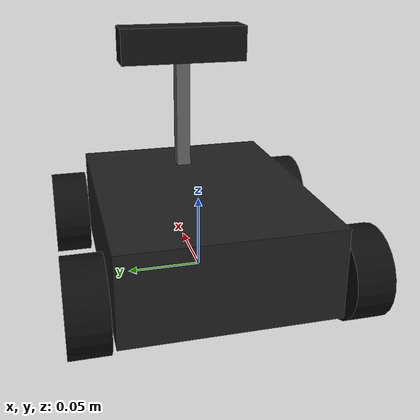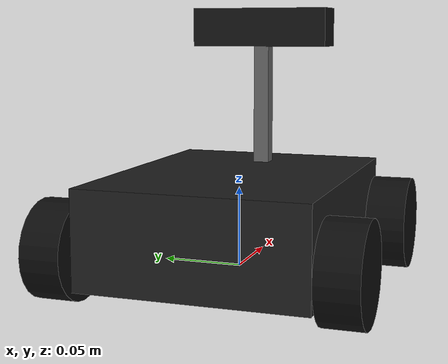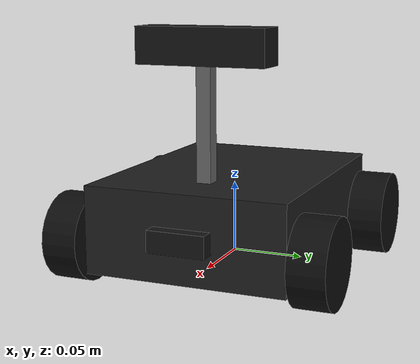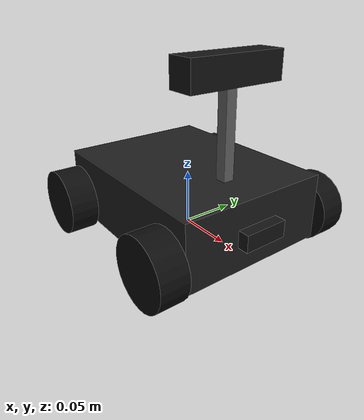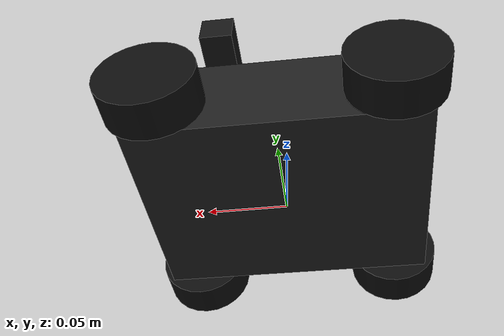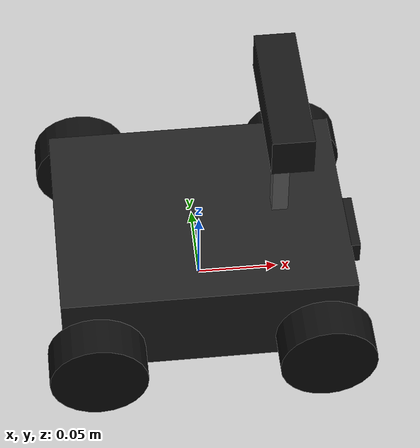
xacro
<?xml version="1.0"?>
<robot name="custom_bot" xmlns:xacro="http://www.ros.org/wiki/xacro">

  <!-- PARAMETERS - estimated from photo, adjust once you measure   -->
  <!-- the real chassis with calipers/tape measure                  -->
  <xacro:property name="base_length" value="0.18"/>
  <xacro:property name="base_width"  value="0.14"/>
  <xacro:property name="base_height" value="0.06"/>
  <xacro:property name="base_mass"   value="1.5"/>    <!-- kg, board stack + frame -->

  <xacro:property name="wheel_radius" value="0.03"/>
  <xacro:property name="wheel_width"  value="0.025"/>
  <xacro:property name="wheel_mass"   value="0.08"/>  <!-- kg -->

  <xacro:property name="wheel_x_offset" value="0.07"/>
  <xacro:property name="wheel_y_offset" value="0.085"/>
  <xacro:property name="wheel_z_offset" value="-0.01"/>

  <!-- camera sits on a raised front bracket, well above the chassis -->
  <xacro:property name="camera_mount_height" value="0.09"/>
  <xacro:property name="camera_x_offset" value="0.05"/>

  <!-- MATERIALS                                                     -->
  <material name="chassis_dark"><color rgba="0.12 0.12 0.12 1"/></material>
  <material name="wheel_yellow"><color rgba="0.9 0.8 0.1 1"/></material>
  <material name="wheel_black"><color rgba="0.05 0.05 0.05 1"/></material>
  <material name="sensor_black"><color rgba="0.08 0.08 0.08 1"/></material>
  <material name="bracket_gray"><color rgba="0.4 0.4 0.4 1"/></material>

  <!-- MACRO: WHEEL (yellow rim + black tire, matches photo)         -->
  <xacro:macro name="wheel" params="prefix x_reflect y_reflect">
    <link name="${prefix}_wheel_link">
      <visual>
        <origin xyz="0 0 0" rpy="1.5708 0 0"/>
        <geometry><cylinder radius="${wheel_radius}" length="${wheel_width}"/></geometry>
        <material name="wheel_black"/>
      </visual>
      <collision>
        <origin xyz="0 0 0" rpy="1.5708 0 0"/>
        <geometry><cylinder radius="${wheel_radius}" length="${wheel_width}"/></geometry>
      </collision>
      <inertial>
        <mass value="${wheel_mass}"/>
        <inertia ixx="0.00003" ixy="0" ixz="0" iyy="0.00003" iyz="0" izz="0.00003"/>
      </inertial>
    </link>

    <joint name="${prefix}_wheel_joint" type="continuous">
      <parent link="base_link"/>
      <child link="${prefix}_wheel_link"/>
      <origin xyz="${x_reflect*wheel_x_offset} ${y_reflect*wheel_y_offset} ${wheel_z_offset}" rpy="0 0 0"/>
      <axis xyz="0 1 0"/>
    </joint>
  </xacro:macro>

  <!-- BASE                                                          -->
  <link name="base_footprint"/>

  <link name="base_link">
    <visual>
      <geometry><box size="${base_length} ${base_width} ${base_height}"/></geometry>
      <material name="chassis_dark"/>
    </visual>
    <collision>
      <geometry><box size="${base_length} ${base_width} ${base_height}"/></geometry>
    </collision>
    <inertial>
      <mass value="${base_mass}"/>
      <inertia ixx="0.004" ixy="0" ixz="0" iyy="0.006" iyz="0" izz="0.008"/>
    </inertial>
  </link>

  <joint name="base_joint" type="fixed">
    <parent link="base_footprint"/>
    <child link="base_link"/>
    <origin xyz="0 0 ${wheel_radius}" rpy="0 0 0"/>
  </joint>

  <!-- Four independently driven wheels, wide stance like the photo -->
  <xacro:wheel prefix="front_left"  x_reflect="1"  y_reflect="1"/>
  <xacro:wheel prefix="front_right" x_reflect="1"  y_reflect="-1"/>
  <xacro:wheel prefix="rear_left"   x_reflect="-1" y_reflect="1"/>
  <xacro:wheel prefix="rear_right"  x_reflect="-1" y_reflect="-1"/>

  <!-- CAMERA MOUNT - raised bracket + camera, front of chassis      -->
  <link name="camera_bracket_link">
    <visual>
      <geometry><box size="0.01 0.01 ${camera_mount_height}"/></geometry>
      <material name="bracket_gray"/>
    </visual>
  </link>
  <joint name="camera_bracket_joint" type="fixed">
    <parent link="base_link"/>
    <child link="camera_bracket_link"/>
    <origin xyz="${camera_x_offset} 0 ${base_height/2 + camera_mount_height/2}" rpy="0 0 0"/>
  </joint>

  <link name="camera_link">
    <visual>
      <geometry><box size="0.025 0.09 0.025"/></geometry>
      <material name="sensor_black"/>
    </visual>
    <collision>
      <geometry><box size="0.025 0.09 0.025"/></geometry>
    </collision>
    <inertial>
      <mass value="0.05"/>
      <inertia ixx="0.00001" ixy="0" ixz="0" iyy="0.00001" iyz="0" izz="0.00001"/>
    </inertial>
  </link>
  <joint name="camera_joint" type="fixed">
    <parent link="camera_bracket_link"/>
    <child link="camera_link"/>
    <origin xyz="0 0 ${camera_mount_height/2}" rpy="0 0 0"/>
  </joint>

  <!-- optical frame, so image data uses the standard camera convention -->
  <link name="camera_optical_link"/>
  <joint name="camera_optical_joint" type="fixed">
    <parent link="camera_link"/>
    <child link="camera_optical_link"/>
    <origin xyz="0 0 0" rpy="${-pi/2} 0 ${-pi/2}"/>
  </joint>

  <!-- IMU / GPS placeholders - adjust once GPS team finalizes mount -->
  <link name="imu_link"/>
  <joint name="imu_joint" type="fixed">
    <parent link="base_link"/>
    <child link="imu_link"/>
    <origin xyz="0 0 0" rpy="0 0 0"/>
  </joint>

  <link name="gps_link"/>
  <joint name="gps_joint" type="fixed">
    <parent link="base_link"/>
    <child link="gps_link"/>
    <origin xyz="0 0 ${base_height/2 + 0.02}" rpy="0 0 0"/>
  </joint>

  <!-- Ultrasonic (HC-SR04 style) - front-center, low on the chassis, facing forward -->
  <link name="ultrasonic_link">
    <visual>
      <geometry><box size="0.02 0.04 0.015"/></geometry>
      <material name="sensor_black"/>
    </visual>
  </link>
  <joint name="ultrasonic_joint" type="fixed">
    <parent link="base_link"/>
    <child link="ultrasonic_link"/>
    <origin xyz="${base_length/2} 0 0" rpy="0 0 0"/>
  </joint>

  <!-- GAZEBO: skid-steer drive plugin (4 independently driven       -->
  <!-- wheels, differential steering left-pair vs right-pair)        -->
	<gazebo>
	  <plugin name="skid_steer_drive_controller" filename="libgazebo_ros_diff_drive.so">
		<update_rate>50</update_rate>

		<num_wheel_pairs>2</num_wheel_pairs>

		<!-- front pair -->
		<left_joint>front_left_wheel_joint</left_joint>
		<right_joint>front_right_wheel_joint</right_joint>

		<!-- rear pair -->
		<left_joint>rear_left_wheel_joint</left_joint>
		<right_joint>rear_right_wheel_joint</right_joint>

		<wheel_separation>${wheel_y_offset*2}</wheel_separation>
		<wheel_separation>${wheel_y_offset*2}</wheel_separation>

		<wheel_diameter>${wheel_radius*2}</wheel_diameter>
		<wheel_diameter>${wheel_radius*2}</wheel_diameter>

		<max_wheel_torque>10</max_wheel_torque>
		<max_wheel_acceleration>2.0</max_wheel_acceleration>

		<odometry_frame>odom</odometry_frame>
		<robot_base_frame>base_footprint</robot_base_frame>
		<publish_odom>true</publish_odom>
		<publish_odom_tf>true</publish_odom_tf>
		<publish_wheel_tf>true</publish_wheel_tf>
	  </plugin>
	</gazebo>

  <!-- Gazebo camera sensor plugin -->
  <gazebo reference="camera_link">
    <sensor type="camera" name="front_camera">
      <update_rate>30.0</update_rate>
      <camera>
        <horizontal_fov>1.3962634</horizontal_fov>
        <image><width>640</width><height>480</height><format>R8G8B8</format></image>
        <clip><near>0.02</near><far>300</far></clip>
      </camera>
      <plugin name="camera_controller" filename="libgazebo_ros_camera.so">
        <frame_name>camera_optical_link</frame_name>
        <ros>
          <namespace>/camera</namespace>
        </ros>
      </plugin>
    </sensor>
  </gazebo>

  <!-- Gazebo IMU sensor plugin -->
  <gazebo reference="imu_link">
    <sensor type="imu" name="imu_sensor">
      <update_rate>100.0</update_rate>
      <imu>
        <angular_velocity>
          <x><noise type="gaussian"><mean>0.0</mean><stddev>0.0002</stddev></noise></x>
          <y><noise type="gaussian"><mean>0.0</mean><stddev>0.0002</stddev></noise></y>
          <z><noise type="gaussian"><mean>0.0</mean><stddev>0.0002</stddev></noise></z>
        </angular_velocity>
        <linear_acceleration>
          <x><noise type="gaussian"><mean>0.0</mean><stddev>0.017</stddev></noise></x>
          <y><noise type="gaussian"><mean>0.0</mean><stddev>0.017</stddev></noise></y>
          <z><noise type="gaussian"><mean>0.0</mean><stddev>0.017</stddev></noise></z>
        </linear_acceleration>
      </imu>
      <plugin name="imu_plugin" filename="libgazebo_ros_imu_sensor.so">
        <ros>
          <namespace>/imu</namespace>
          <remapping>~/out:=data</remapping>
        </ros>
        <frame_name>imu_link</frame_name>
      </plugin>
    </sensor>
  </gazebo>

  <!-- Gazebo ultrasonic sensor plugin -->
  <!-- Simulated as a narrow-FOV ray sensor, matching an HC-SR04's ~15 degree -->
  <!-- beam and 2cm-4m range. Gazebo has no dedicated "ultrasonic" sensor type; -->
  <!-- this is the standard way to approximate one. -->
  <gazebo reference="ultrasonic_link">
    <sensor type="ray" name="ultrasonic_sensor">
      <update_rate>20</update_rate>
      <ray>
        <scan>
          <horizontal>
            <samples>5</samples>
            <resolution>1</resolution>
            <min_angle>-0.13</min_angle>
            <max_angle>0.13</max_angle>
          </horizontal>
          <vertical>
            <samples>5</samples>
            <resolution>1</resolution>
            <min_angle>-0.13</min_angle>
            <max_angle>0.13</max_angle>
          </vertical>
        </scan>
        <range>
          <min>0.02</min>
          <max>4.0</max>
          <resolution>0.01</resolution>
        </range>
      </ray>
      <plugin name="ultrasonic_plugin" filename="libgazebo_ros_ray_sensor.so">
        <ros>
          <namespace>/ultrasonic</namespace>
          <remapping>~/out:=range</remapping>
        </ros>
        <output_type>sensor_msgs/Range</output_type>
        <radiation_type>ultrasound</radiation_type>
        <frame_name>ultrasonic_link</frame_name>
      </plugin>
    </sensor>
  </gazebo>

</robot>
